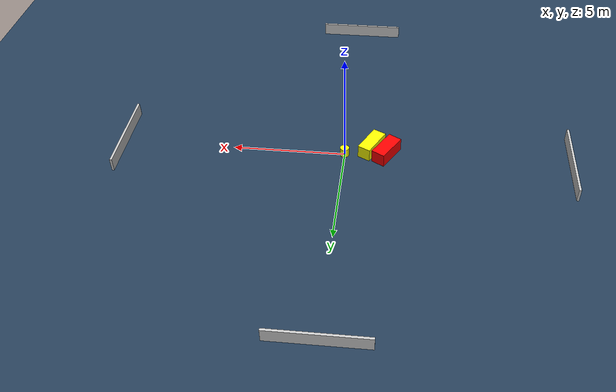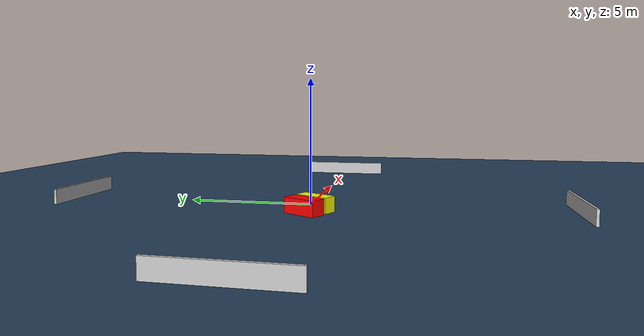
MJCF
<?xml version="1.0" ?>
<mujoco model="generated_environment">
  <option timestep="0.01" integrator="RK4" cone="elliptic"/>
  <default>
    <geom density="1"/>
  </default>
  <asset>
    <texture builtin="gradient" height="3072" name="skybox" rgb1="0.3 0.5 0.7" rgb2="0 0 0" type="skybox" width="512"/>
    <texture builtin="checker" height="300" name="groundplane" rgb1="0.2 0.3 0.4" rgb2="0.1 0.2 0.3" type="2d" width="300"/>
    <material name="groundplane" reflectance="0.2" texrepeat="5 5" texture="groundplane"/>
  </asset>
  <worldbody>
    <light dir="0 0 -1" directional="true" pos="0 0 1.5"/>
    <geom condim="3" friction="0.5 0.005 0.001" material="groundplane" name="floor" pos="0 0 0" size="0 0 0.05" type="plane"/>
    <body name="walls">
      <geom name="wall_1" condim="4" pos="-10.0 0.0 0.3" rgba="0.800000011920929 0.800000011920929 0.800000011920929 1.0" size="0.05 2.0 0.3" type="box"/>
      <geom name="wall_2" condim="4" pos="10.0 0.0 0.3" rgba="0.800000011920929 0.800000011920929 0.800000011920929 1.0" size="0.05 2.0 0.3" type="box"/>
      <geom name="wall_3" condim="4" pos="0.0 -10.0 0.3" rgba="0.800000011920929 0.800000011920929 0.800000011920929 1.0" size="2.0 0.05 0.3" type="box"/>
      <geom name="wall_4" condim="4" pos="0.0 10.0 0.3" rgba="0.800000011920929 0.800000011920929 0.800000011920929 1.0" size="2.0 0.05 0.3" type="box"/>
    </body>
    <body name="robot">
      <joint name="joint_x" type="slide" pos="0 0 0" axis="1 0 0"/>
      <joint name="joint_y" type="slide" pos="0 0 0" axis="0 1 0"/>
      <geom name="robot" type="cylinder" pos="0.0 0.0 0.2" size="0.2 0.2 0.0" mass="5.0" friction="1.0 0.005 0.0001" condim="4" rgba="1.0 1.0 0.0 1.0"/>
    </body>
    <body name="obstacle_1_movable">
      <geom name="obstacle_1_movable" condim="4" pos="-1.1836981276642637 -0.41680073390071437 0.3" euler="0 0 242.81988014762442" friction="0.0 0.005 0.001" rgba="1.0 1.0 0.0 1.0" size="0.6986494421061155 0.2973662612901506 0.3" type="box" mass="0.1"/>
      <joint type="free"/>
    </body>
    <body name="obstacle_2_static">
      <geom name="obstacle_2_static" condim="4" pos="-1.8565326713138468 -0.12907473490876004 0.3" euler="0 0 59.81711107005386" friction="0.0 0.005 0.001" rgba="1.0 0.0 0.0 1.0" size="0.7026387449957283 0.3136766612569653 0.3" type="box"/>
    </body>
  </worldbody>
  <actuator>
    <motor name="actuator_x" joint="joint_x" gear="1" ctrlrange="-1 1"/>
    <motor name="actuator_y" joint="joint_y" gear="1" ctrlrange="-1 1"/>
  </actuator>
</mujoco>
